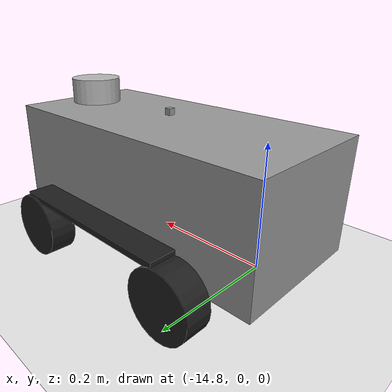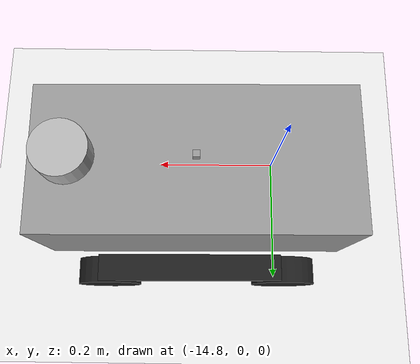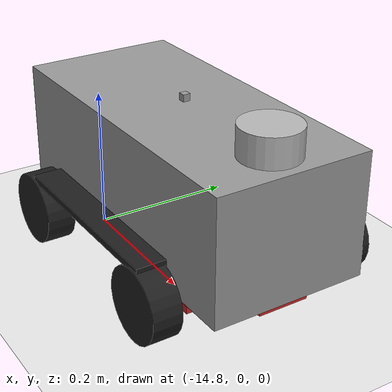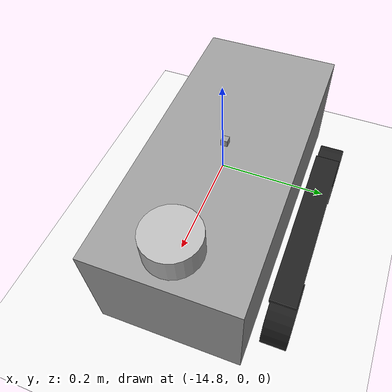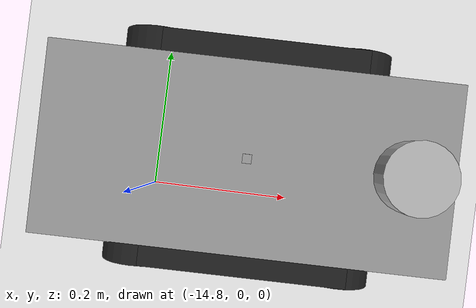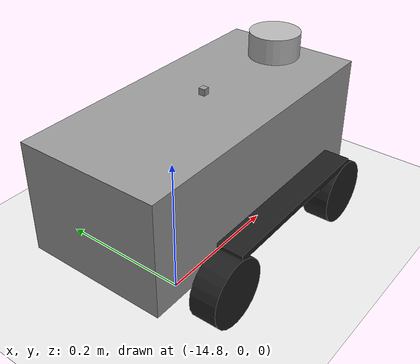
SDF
<sdf version="1.7">
 <world name="default">
  <light name="sun" type="directional">
   <pose>0 0 10 0 -0 0</pose>
   <diffuse>0.8 0.8 0.8 1</diffuse>
   <specular>0.2 0.2 0.2 1</specular>
   <attenuation>
    <range>1000</range>
    <constant>0.9</constant>
    <linear>0.01</linear>
    <quadratic>0.001</quadratic>
   </attenuation>
   <direction>-0.5 0.1 -0.9</direction>
   <spot><inner_angle>0</inner_angle><outer_angle>0</outer_angle><falloff>0</falloff></spot>
  </light>
  <model name="ground_plane">
   <static>1</static>
   <link name="link">
    <collision name="collision">
     <geometry><plane><normal>0 0 1</normal><size>100 100</size></plane></geometry>
     <surface>
      <contact><collide_bitmask>65535</collide_bitmask></contact>
      <friction><ode><mu>100</mu><mu2>50</mu2></ode></friction>
     </surface>
    </collision>
    <visual name="visual">
     <cast_shadows>0</cast_shadows>
     <geometry><plane><normal>0 0 1</normal><size>100 100</size></plane></geometry>
     <material>
      <script><uri>file://media/materials/scripts/gazebo.material</uri><name>Gazebo/White</name></script>
     </material>
    </visual>
   </link>
  </model>
  <model name="mbot">
   <pose>-14.6653 0.056172 -6e-06 1e-06 5e-06 0.010965</pose>
   <frame name="tankbot::__model__" attached_to="tankbot::chassis">
    <pose relative_to="__model__">0 0 0 0 -0 0</pose>
   </frame>
   <link name="tankbot::chassis">
    <pose relative_to="tankbot::__model__">0 0 0.135 0 -0 0</pose>
    <inertial>
     <pose>0.0465 0 0 0 -0 0</pose>
     <mass>2</mass>
     <inertia>
      <ixx>0.0125927</ixx>
      <iyy>0.0408542</iyy>
      <izz>0.0438135</izz>
      <ixy>0</ixy>
      <ixz>0</ixz>
      <iyz>0</iyz>
     </inertia>
    </inertial>
    <collision name="collision"><geometry><box><size>0.465 0.216 0.17</size></box></geometry></collision>
    <visual name="visual">
     <geometry><box><size>0.465 0.216 0.17</size></box></geometry>
     <material>
      <script><uri>file://media/materials/scripts/gazebo.material</uri><name>Gazebo/Grey</name></script>
     </material>
    </visual>
   </link>
   <link name="tankbot::wheel_fl">
    <pose relative_to="tankbot::__model__">0.1395 0.142 0.05 -1.5708 -0.087266 0</pose>
    <inertial>
     <mass>0.25</mass>
     <inertia>
      <ixx>0.000189583</ixx>
      <iyy>0.000189583</iyy>
      <izz>0.0003125</izz>
      <ixy>0</ixy>
      <ixz>0</ixz>
      <iyz>0</iyz>
     </inertia>
    </inertial>
    <collision name="collision">
     <geometry><cylinder><radius>0.05</radius><length>0.04</length></cylinder></geometry>
    </collision>
    <visual name="tankbot::wheel_fl">
     <geometry><cylinder><radius>0.05</radius><length>0.04</length></cylinder></geometry>
     <material>
      <script><uri>file://media/materials/scripts/gazebo.material</uri><name>Gazebo/Black</name></script>
     </material>
    </visual>
   </link>
   <joint name="tankbot::wheel_fl_drive" type="revolute">
    <parent>tankbot::chassis</parent>
    <child>tankbot::wheel_fl</child>
    <axis>
     <xyz>0 0 1</xyz>
     <limit><lower>-1e+16</lower><upper>1e+16</upper></limit>
     <dynamics><spring_reference>0</spring_reference><spring_stiffness>0</spring_stiffness></dynamics>
    </axis>
   </joint>
   <link name="tankbot::chain_l_up">
    <pose relative_to="tankbot::__model__">0.0098 0.14 0.1 0 -0 0</pose>
    <gravity>0</gravity>
    <collision name="collision"><geometry><box><size>0.28 0.04 0.01</size></box></geometry></collision>
    <visual name="visual">
     <geometry><box><size>0.28 0.04 0.01</size></box></geometry>
     <material>
      <script><uri>file://media/materials/scripts/gazebo.material</uri><name>Gazebo/Black</name></script>
     </material>
    </visual>
    <inertial>
     <inertia><ixx>1</ixx><ixy>0</ixy><ixz>0</ixz><iyy>1</iyy><iyz>0</iyz><izz>1</izz></inertia>
     <mass>1</mass>
    </inertial>
   </link>
   <link name="tankbot::chain_r_up">
    <pose relative_to="tankbot::__model__">0.0098 -0.14 0.1 0 -0 0</pose>
    <gravity>0</gravity>
    <collision name="collision"><geometry><box><size>0.28 0.04 0.01</size></box></geometry></collision>
    <visual name="visual">
     <geometry><box><size>0.28 0.04 0.01</size></box></geometry>
     <material>
      <script><uri>file://media/materials/scripts/gazebo.material</uri><name>Gazebo/Black</name></script>
     </material>
    </visual>
    <inertial>
     <inertia><ixx>1</ixx><ixy>0</ixy><ixz>0</ixz><iyy>1</iyy><iyz>0</iyz><izz>1</izz></inertia>
     <mass>1</mass>
    </inertial>
   </link>
   <joint name="tankbot::chain_up_joint" type="revolute">
    <parent>tankbot::chassis</parent>
    <child>tankbot::chain_r_up</child>
   </joint>
   <joint name="tankbot::chain_up_2_joint" type="revolute">
    <parent>tankbot::chassis</parent>
    <child>tankbot::chain_l_up</child>
   </joint>
   <link name="tankbot::wheel_fr">
    <pose relative_to="tankbot::__model__">0.1395 -0.142 0.05 -1.5708 -0.087266 0</pose>
    <inertial>
     <mass>0.25</mass>
     <inertia>
      <ixx>0.000189583</ixx>
      <iyy>0.000189583</iyy>
      <izz>0.0003125</izz>
      <ixy>0</ixy>
      <ixz>0</ixz>
      <iyz>0</iyz>
     </inertia>
    </inertial>
    <collision name="collision">
     <geometry><cylinder><radius>0.05</radius><length>0.04</length></cylinder></geometry>
    </collision>
    <visual name="visual">
     <geometry><cylinder><radius>0.05</radius><length>0.04</length></cylinder></geometry>
     <material>
      <script><uri>file://media/materials/scripts/gazebo.material</uri><name>Gazebo/Black</name></script>
     </material>
    </visual>
   </link>
   <joint name="tankbot::wheel_fr_drive" type="revolute">
    <parent>tankbot::chassis</parent>
    <child>tankbot::wheel_fr</child>
    <axis>
     <xyz>0 0 1</xyz>
     <limit><lower>-1e+16</lower><upper>1e+16</upper></limit>
     <dynamics><spring_reference>0</spring_reference><spring_stiffness>0</spring_stiffness></dynamics>
    </axis>
   </joint>
   <link name="tankbot::wheel_rl">
    <pose relative_to="tankbot::__model__">-0.1395 0.142 0.05 -1.5708 0 0</pose>
    <inertial>
     <mass>0.25</mass>
     <inertia>
      <ixx>0.000189583</ixx>
      <iyy>0.000189583</iyy>
      <izz>0.0003125</izz>
      <ixy>0</ixy>
      <ixz>0</ixz>
      <iyz>0</iyz>
     </inertia>
    </inertial>
    <collision name="collision">
     <geometry><cylinder><radius>0.05</radius><length>0.04</length></cylinder></geometry>
    </collision>
    <visual name="visual">
     <geometry><cylinder><radius>0.05</radius><length>0.04</length></cylinder></geometry>
     <material>
      <script><uri>file://media/materials/scripts/gazebo.material</uri><name>Gazebo/Black</name></script>
     </material>
    </visual>
   </link>
   <joint name="tankbot::wheel_rl_drive" type="revolute">
    <parent>tankbot::chassis</parent>
    <child>tankbot::wheel_rl</child>
    <axis>
     <xyz>0 0 1</xyz>
     <limit><lower>-1e+16</lower><upper>1e+16</upper></limit>
     <dynamics><spring_reference>0</spring_reference><spring_stiffness>0</spring_stiffness></dynamics>
    </axis>
   </joint>
   <link name="tankbot::wheel_rr">
    <pose relative_to="tankbot::__model__">-0.1395 -0.142 0.05 -1.5708 0 0</pose>
    <inertial>
     <mass>0.25</mass>
     <inertia>
      <ixx>0.000189583</ixx>
      <iyy>0.000189583</iyy>
      <izz>0.0003125</izz>
      <ixy>0</ixy>
      <ixz>0</ixz>
      <iyz>0</iyz>
     </inertia>
    </inertial>
    <collision name="collision">
     <geometry><cylinder><radius>0.05</radius><length>0.04</length></cylinder></geometry>
    </collision>
    <visual name="visual">
     <geometry><cylinder><radius>0.05</radius><length>0.04</length></cylinder></geometry>
     <material>
      <script><uri>file://media/materials/scripts/gazebo.material</uri><name>Gazebo/Black</name></script>
     </material>
    </visual>
   </link>
   <joint name="tankbot::wheel_rr_drive" type="revolute">
    <parent>tankbot::chassis</parent>
    <child>tankbot::wheel_rr</child>
    <axis>
     <xyz>0 0 1</xyz>
     <limit><lower>-1e+16</lower><upper>1e+16</upper></limit>
     <dynamics><spring_reference>0</spring_reference><spring_stiffness>0</spring_stiffness></dynamics>
    </axis>
   </joint>
   <frame name="tankbot::ultrasonic_sensor::__model__" attached_to="tankbot::ultrasonic_sensor::link">
    <pose relative_to="tankbot::__model__">0.18 0 0.24 0 -0 0</pose>
   </frame>
   <link name="tankbot::ultrasonic_sensor::link">
    <inertial>
     <mass>0.1</mass>
     <inertia><ixx>1</ixx><ixy>0</ixy><ixz>0</ixz><iyy>1</iyy><iyz>0</iyz><izz>1</izz></inertia>
    </inertial>
    <visual name="visual">
     <geometry><cylinder><radius>0.04</radius><length>0.04</length></cylinder></geometry>
    </visual>
    <collision name="collision-base">
     <pose>0 0 -0.0145 0 -0 0</pose>
     <geometry><box><size>0.05 0.05 0.041</size></box></geometry>
    </collision>
    <collision name="collision-top">
     <pose>0 0 0.0205 0 -0 0</pose>
     <geometry><cylinder><radius>0.021</radius><length>0.029</length></cylinder></geometry>
    </collision>
    <sensor name="sonar" type="sonar">
     <pose>0.04 0 0 0 1.5 3.14</pose>
     <sonar><min>0</min><max>3</max><radius>0.3</radius></sonar>
     <plugin name="sonar" filename="libSonarPlugin.so"/>
     <always_on>1</always_on>
     <update_rate>30</update_rate>
     <visualize>1</visualize>
    </sensor>
    <pose relative_to="tankbot::ultrasonic_sensor::__model__">0 0 0 0 -0 0</pose>
   </link>
   <joint name="tankbot::sonar_joint" type="fixed">
    <child>tankbot::ultrasonic_sensor::link</child>
    <parent>tankbot::chassis</parent>
   </joint>
   <frame name="tankbot::camera_sensor::__model__" attached_to="tankbot::camera_sensor::link">
    <pose relative_to="tankbot::__model__">0.2 0 0.04 0 1.57 0</pose>
   </frame>
   <frame name="tankbot::camera_sensor_2::__model__" attached_to="tankbot::camera_sensor::link_2">
    <pose relative_to="tankbot::__model__">0.15 -0.07 0.04 0 1.57 0</pose>
   </frame>
   <link name="tankbot::camera_sensor::link">
    <inertial>
     <mass>0.1</mass>
     <inertia><ixx>1</ixx><ixy>0</ixy><ixz>0</ixz><iyy>1</iyy><iyz>0</iyz><izz>1</izz></inertia>
    </inertial>
    <visual name="visual">
     <geometry><box><size>0.01 0.07 0.04</size></box></geometry>
     <material>
      <script><uri>file://media/materials/scripts/gazebo.material</uri><name>Gazebo/Red</name></script>
     </material>
    </visual>
    <collision name="collision">
     <pose>0 0 -0.0145 0 -0 0</pose>
     <geometry><box><size>0.01 0.07 0.04</size></box></geometry>
    </collision>
    <sensor name="camera" type="camera">
     <camera>
      <horizontal_fov>1.39626</horizontal_fov>
      <image><width>2</width><height>2</height></image>
      <clip><near>0.02</near><far>300</far></clip>
     </camera>
     <always_on>1</always_on>
     <update_rate>10</update_rate>
     <visualize>1</visualize>
     <plugin name="camera_controller" filename="libCameraPlugin.so"/>
    </sensor>
    <pose relative_to="tankbot::camera_sensor::__model__">0 0 0 0 -0 0</pose>
   </link>
   <link name="tankbot::camera_sensor::link_2">
    <inertial>
     <mass>0.1</mass>
     <inertia><ixx>1</ixx><ixy>0</ixy><ixz>0</ixz><iyy>1</iyy><iyz>0</iyz><izz>1</izz></inertia>
    </inertial>
    <visual name="visual">
     <geometry><box><size>0.01 0.07 0.04</size></box></geometry>
     <material>
      <script><uri>file://media/materials/scripts/gazebo.material</uri><name>Gazebo/Red</name></script>
     </material>
    </visual>
    <collision name="collision">
     <pose>0 0 -0.0145 0 -0 0</pose>
     <geometry><box><size>0.01 0.07 0.04</size></box></geometry>
    </collision>
    <sensor name="camera" type="camera">
     <camera>
      <horizontal_fov>1.39626</horizontal_fov>
      <image><width>2</width><height>2</height></image>
      <clip><near>0.02</near><far>300</far></clip>
     </camera>
     <always_on>1</always_on>
     <update_rate>10</update_rate>
     <visualize>1</visualize>
     <plugin name="camera_controller" filename="libCameraPlugin.so"/>
    </sensor>
    <pose relative_to="tankbot::camera_sensor_2::__model__">0 0 0 0 -0 0</pose>
   </link>
   <frame name="tankbot::microphone_sensor::__model__" attached_to="tankbot::microphone_sensor::link">
    <pose relative_to="tankbot::__model__">0 0 0.23 0 -0 0</pose>
   </frame>
   <link name="tankbot::microphone_sensor::link">
    <inertial>
     <mass>0.1</mass>
     <inertia><ixx>1</ixx><ixy>0</ixy><ixz>0</ixz><iyy>1</iyy><iyz>0</iyz><izz>1</izz></inertia>
    </inertial>
    <visual name="visual">
     <geometry><box><size>0.01 0.01 0.01</size></box></geometry>
     <material>
      <script><uri>file://media/materials/scripts/gazebo.material</uri><name>Gazebo/Grey</name></script>
     </material>
    </visual>
    <collision name="collision"><geometry><box><size>0.01 0.01 0.01</size></box></geometry></collision>
    <pose relative_to="tankbot::microphone_sensor::__model__">0 0 0 0 -0 0</pose>
   </link>
   <plugin name="microphone_controller" filename="libmicrophone_control_plugin.so"/>
   <joint name="tankbot::camera_joint" type="fixed">
    <child>tankbot::camera_sensor::link</child>
    <parent>tankbot::chassis</parent>
   </joint>
   <joint name="tankbot::camera_joint_2" type="fixed">
    <child>tankbot::camera_sensor::link_2</child>
    <parent>tankbot::chassis</parent>
   </joint>
   <plugin name="tankbot_control" filename="libtank_control_plugin.so"/>
  </model>
  <gravity>0 0 -9.8</gravity>
  <magnetic_field>6e-06 2.3e-05 -4.2e-05</magnetic_field>
  <atmosphere type="adiabatic"/>
  <physics type="ode">
   <max_step_size>0.001</max_step_size>
   <real_time_factor>1</real_time_factor>
   <real_time_update_rate>1000</real_time_update_rate>
  </physics>
  <scene><ambient>0.4 0.4 0.4 1</ambient><background>0.7 0.7 0.7 1</background><shadows>1</shadows></scene>
  <spherical_coordinates>
   <surface_model>EARTH_WGS84</surface_model>
   <latitude_deg>0</latitude_deg>
   <longitude_deg>0</longitude_deg>
   <elevation>0</elevation>
   <heading_deg>0</heading_deg>
  </spherical_coordinates>
 </world>
</sdf>
